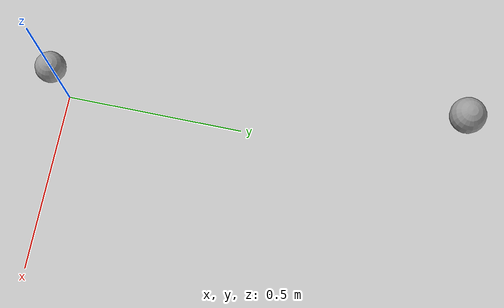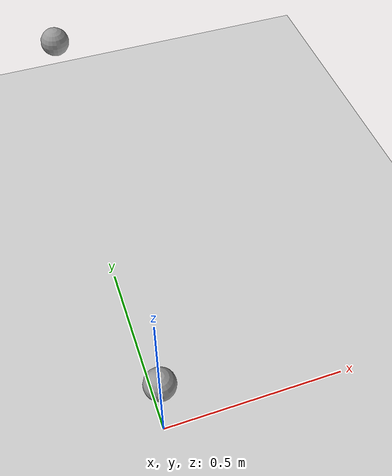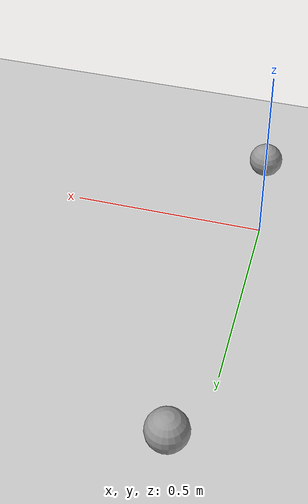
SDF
<?xml version="1.0" ?>
<sdf version="1.6">
  <world name="default">
    <include>
      <uri>model://ground_plane</uri>
    </include>
    <include>
      <uri>model://sun</uri>
    </include>
    <model name="DriverFollower">
      <model name="Driver">
        <pose>0 1 0.5 0 0 0</pose>
        <link name="link_1">
          <inertial>
            <mass>1</mass>
            <inertia>
              <ixx>0.00530833</ixx>
              <ixy>0</ixy>
              <ixz>0</ixz>
              <iyy>0.00530833</iyy>
              <iyz>0</iyz>
              <izz>0.00530833</izz>
            </inertia>
          </inertial>
          <visual name="visual">
            <geometry>
              <sphere>
                <radius>0.04</radius>
              </sphere>
            </geometry>
            <material>
              <script>
                <name>Gazebo/Grey</name>
                <uri>file://media/materials/scripts/gazebo.material</uri>
              </script>
            </material>
          </visual>
          <collision name="collision">
            <geometry>
              <sphere>
                <radius>0.04</radius>
              </sphere>
            </geometry>
          </collision>
        </link>
        <plugin filename="libAnimMovePlugin.so" name="AnimMovePlugin"/>
      </model>
      <model name="Follower">
        <pose>0 0 0.25 0 0 0</pose>
        <link name="link_1">
          <pose>0 0 0 0 0 0</pose>
          <inertial>
            <mass>1</mass>
            <inertia>
              <ixx>0.00530833</ixx>
              <ixy>0</ixy>
              <ixz>0</ixz>
              <iyy>0.00530833</iyy>
              <iyz>0</iyz>
              <izz>0.00530833</izz>
            </inertia>
          </inertial>
          <visual name="visual">
            <geometry>
              <sphere>
                <radius>0.04</radius>
              </sphere>
            </geometry>
            <material>
              <script>
                <name>Gazebo/Grey</name>
                <uri>file://media/materials/scripts/gazebo.material</uri>
              </script>
            </material>
          </visual>
          <collision name="collision">
            <geometry>
              <sphere>
                <radius>0.04</radius>
              </sphere>
            </geometry>
          </collision>
        </link>
      </model>
      <joint name="follower_driver" type="fixed">
        <parent>Driver::link_1</parent>
        <child>Follower::link_1</child>
        <pose>0.0 0 0.04 0 0 0</pose>
      </joint>
    </model>
  </world>
</sdf>
